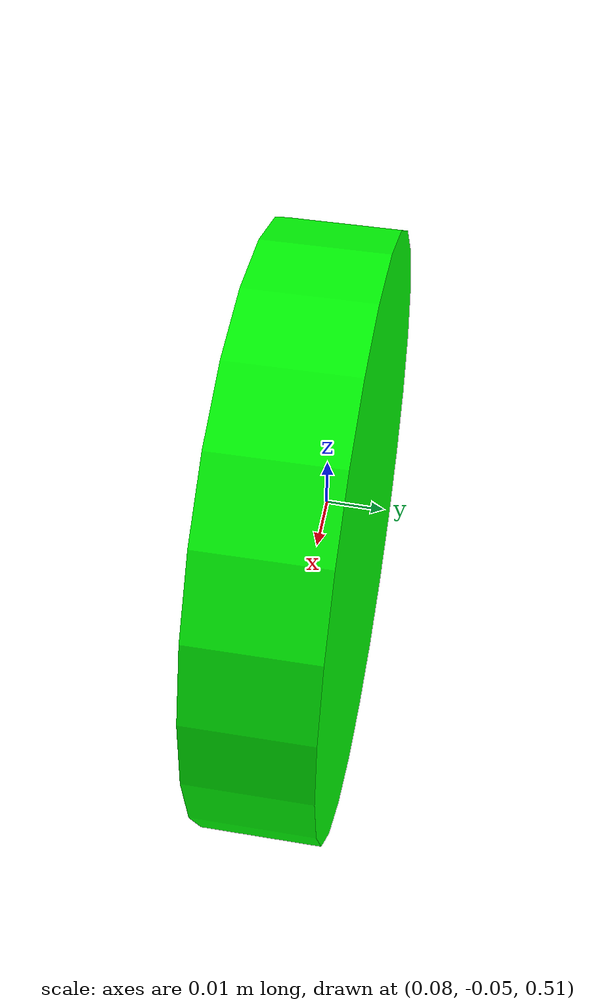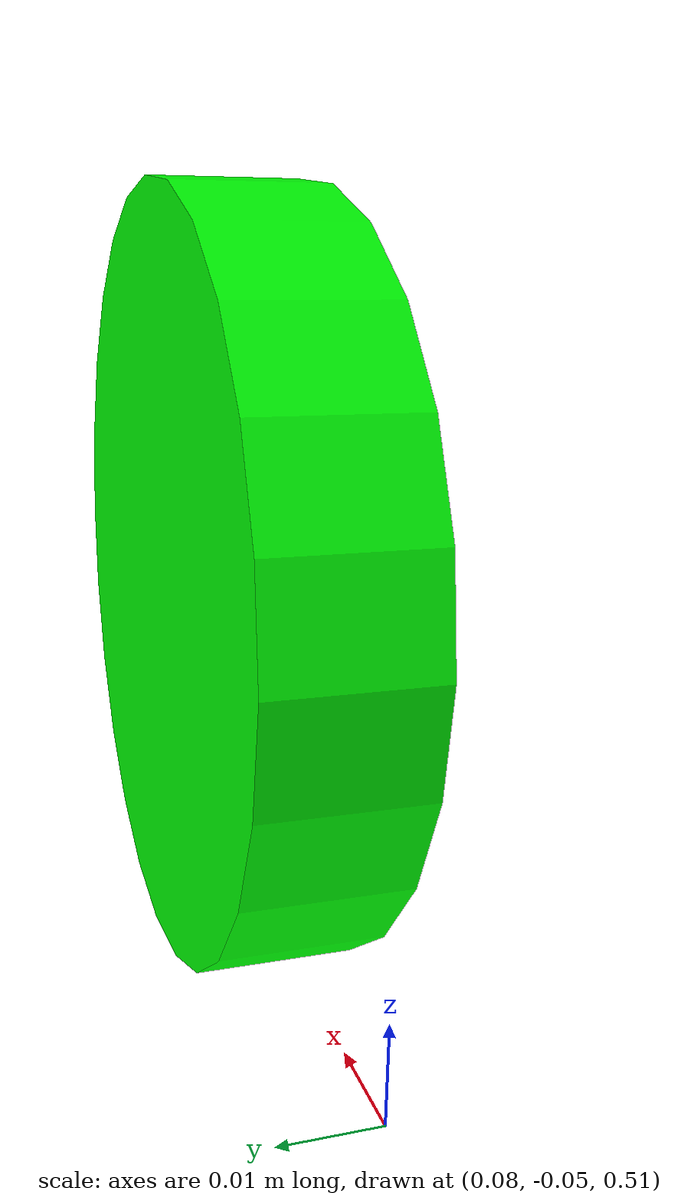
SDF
<?xml version="1.0"?>
<sdf version="1.6">
  <model name="traffic_light_green_lens">
    <static>false</static>
    <link name="lens">
      <gravity>false</gravity>
      <kinematic>true</kinematic>
      <visual name="green_visual">
        <pose>0.12 -0.046 0.55 1.570796 0 0</pose>
        <cast_shadows>false</cast_shadows>
        <geometry><cylinder><radius>0.041</radius><length>0.016</length></cylinder></geometry>
        <material>
          <ambient>0.005 1.0 0.02 1</ambient>
          <diffuse>0.005 1.0 0.02 1</diffuse>
          <emissive>0.003 0.58 0.012 1</emissive>
          <specular>0.15 0.15 0.15 1</specular>
        </material>
      </visual>
    </link>
  </model>
</sdf>
